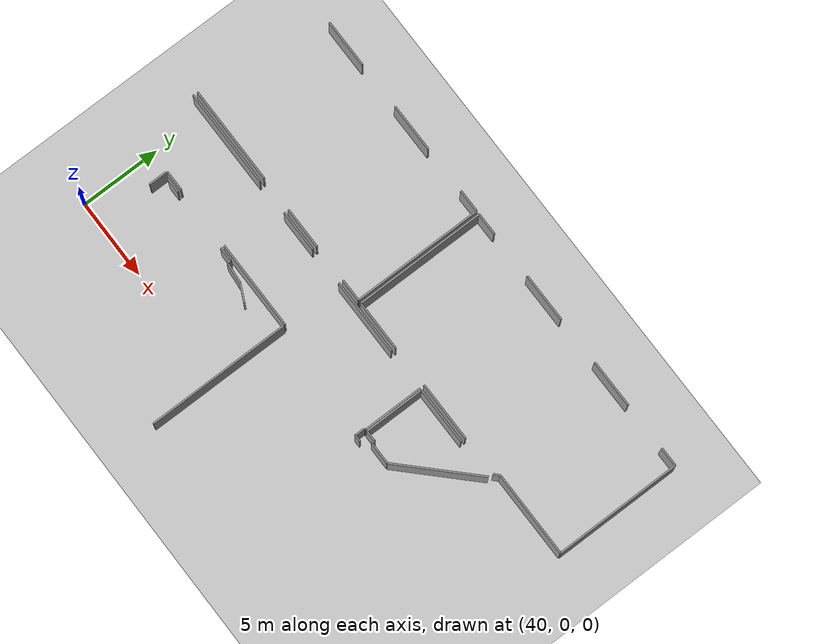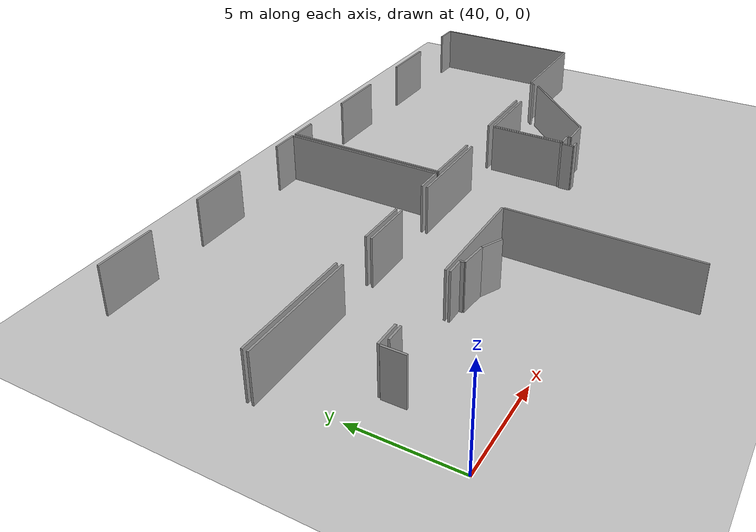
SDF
<sdf version="1.6">
 <world name="default">
  <model name="ground_plane">
   <static>1</static>
   <link name="link">
    <collision name="collision">
     <geometry><plane><normal>0 0 1</normal><size>100 100</size></plane></geometry>
     <surface><friction><ode><mu>100</mu><mu2>50</mu2></ode></friction></surface>
    </collision>
    <visual name="visual">
     <cast_shadows>0</cast_shadows>
     <geometry><plane><normal>0 0 1</normal><size>100 100</size></plane></geometry>
     <material>
      <script><uri>file://media/materials/scripts/gazebo.material</uri><name>Gazebo/Grey</name></script>
     </material>
    </visual>
   </link>
  </model>
  <model name="50041184">
   <static>1</static>
   <link name="Wall_45">
    <collision name="Wall_45_Collision">
     <geometry><box><size>3.74175611428 0.1 2.5</size></box></geometry>
     <pose>1.87087805714 0 1.25 0 0 0</pose>
    </collision>
    <visual name="Wall_45_Visual">
     <pose>1.87087805714 0 1.25 0 0 0</pose>
     <geometry><box><size>3.74175611428 0.1 2.5</size></box></geometry>
     <material>
      <script><uri>file://media/materials/scripts/gazebo.material</uri><name>Gazebo/Grey</name></script>
      <ambient>1 1 1 1</ambient>
     </material>
    </visual>
    <pose>131.436781536 -8.50927695013 0 0 0 -1.57079632679</pose>
   </link>
   <link name="Wall_46">
    <collision name="Wall_46_Collision">
     <geometry><box><size>0.083787712405 0.1 2.5</size></box></geometry>
     <pose>0.0418938562025 0 1.25 0 0 0</pose>
    </collision>
    <visual name="Wall_46_Visual">
     <pose>0.0418938562025 0 1.25 0 0 0</pose>
     <geometry><box><size>0.083787712405 0.1 2.5</size></box></geometry>
     <material>
      <script><uri>file://media/materials/scripts/gazebo.material</uri><name>Gazebo/Grey</name></script>
      <ambient>1 1 1 1</ambient>
     </material>
    </visual>
    <pose>131.436781536 -12.2510330644 0 0 0 3.14159265359</pose>
   </link>
   <link name="Wall_47">
    <collision name="Wall_47_Collision">
     <geometry><box><size>5.54014510508 0.1 2.5</size></box></geometry>
     <pose>2.77007255254 0 1.25 0 0 0</pose>
    </collision>
    <visual name="Wall_47_Visual">
     <pose>2.77007255254 0 1.25 0 0 0</pose>
     <geometry><box><size>5.54014510508 0.1 2.5</size></box></geometry>
     <material>
      <script><uri>file://media/materials/scripts/gazebo.material</uri><name>Gazebo/Grey</name></script>
      <ambient>1 1 1 1</ambient>
     </material>
    </visual>
    <pose>124.116782298 -12.2510330644 0 0 0 3.14159265359</pose>
   </link>
   <link name="Wall_48">
    <collision name="Wall_48_Collision">
     <geometry><box><size>1.27230371776 0.1 2.5</size></box></geometry>
     <pose>0.636151858881 0 1.25 0 0 0</pose>
    </collision>
    <visual name="Wall_48_Visual">
     <pose>0.636151858881 0 1.25 0 0 0</pose>
     <geometry><box><size>1.27230371776 0.1 2.5</size></box></geometry>
     <material>
      <script><uri>file://media/materials/scripts/gazebo.material</uri><name>Gazebo/Grey</name></script>
      <ambient>1 1 1 1</ambient>
     </material>
    </visual>
    <pose>114.623761434 -12.2510330644 0 0 0 3.14159265359</pose>
   </link>
   <link name="Wall_72">
    <collision name="Wall_72_Collision">
     <geometry><box><size>6.14951028621 0.1 2.5</size></box></geometry>
     <pose>3.07475514311 0 1.25 0 0 0</pose>
    </collision>
    <visual name="Wall_72_Visual">
     <pose>3.07475514311 0 1.25 0 0 0</pose>
     <geometry><box><size>6.14951028621 0.1 2.5</size></box></geometry>
     <material>
      <script><uri>file://media/materials/scripts/gazebo.material</uri><name>Gazebo/Grey</name></script>
      <ambient>1 1 1 1</ambient>
     </material>
    </visual>
    <pose>110.758989723 -8.4970896465 0 0 0 0.0</pose>
   </link>
   <link name="Wall_73">
    <collision name="Wall_73_Collision">
     <geometry><box><size>2.59234104138 0.1 2.5</size></box></geometry>
     <pose>1.29617052069 0 1.25 0 0 0</pose>
    </collision>
    <visual name="Wall_73_Visual">
     <pose>1.29617052069 0 1.25 0 0 0</pose>
     <geometry><box><size>2.59234104138 0.1 2.5</size></box></geometry>
     <material>
      <script><uri>file://media/materials/scripts/gazebo.material</uri><name>Gazebo/Grey</name></script>
      <ambient>1 1 1 1</ambient>
     </material>
    </visual>
    <pose>119.11617928 -8.4970896465 0 0 0 0.0</pose>
   </link>
   <link name="Wall_74">
    <collision name="Wall_74_Collision">
     <geometry><box><size>4.76955205312 0.1 2.5</size></box></geometry>
     <pose>2.38477602656 0 1.25 0 0 0</pose>
    </collision>
    <visual name="Wall_74_Visual">
     <pose>2.38477602656 0 1.25 0 0 0</pose>
     <geometry><box><size>4.76955205312 0.1 2.5</size></box></geometry>
     <material>
      <script><uri>file://media/materials/scripts/gazebo.material</uri><name>Gazebo/Grey</name></script>
      <ambient>1 1 1 1</ambient>
     </material>
    </visual>
    <pose>124.083775017 -8.4970896465 0 0 0 0.0</pose>
   </link>
   <link name="Wall_129">
    <collision name="Wall_129_Collision">
     <geometry><box><size>1.39646187342 0.1 2.5</size></box></geometry>
     <pose>0.698230936709 0 1.25 0 0 0</pose>
    </collision>
    <visual name="Wall_129_Visual">
     <pose>0.698230936709 0 1.25 0 0 0</pose>
     <geometry><box><size>1.39646187342 0.1 2.5</size></box></geometry>
     <material>
      <script><uri>file://media/materials/scripts/gazebo.material</uri><name>Gazebo/Grey</name></script>
      <ambient>1 1 1 1</ambient>
     </material>
    </visual>
    <pose>125.490392977 -8.22198665744 0 0 0 3.14159265359</pose>
   </link>
   <link name="Wall_130">
    <collision name="Wall_130_Collision">
     <geometry><box><size>2.60249712773 0.1 2.5</size></box></geometry>
     <pose>1.30124856387 0 1.25 0 0 0</pose>
    </collision>
    <visual name="Wall_130_Visual">
     <pose>1.30124856387 0 1.25 0 0 0</pose>
     <geometry><box><size>2.60249712773 0.1 2.5</size></box></geometry>
     <material>
      <script><uri>file://media/materials/scripts/gazebo.material</uri><name>Gazebo/Grey</name></script>
      <ambient>1 1 1 1</ambient>
     </material>
    </visual>
    <pose>121.72121543 -8.22198665744 0 0 0 3.14159265359</pose>
   </link>
   <link name="Wall_131">
    <collision name="Wall_131_Collision">
     <geometry><box><size>6.11853422284 0.1 2.5</size></box></geometry>
     <pose>3.05926711142 0 1.25 0 0 0</pose>
    </collision>
    <visual name="Wall_131_Visual">
     <pose>3.05926711142 0 1.25 0 0 0</pose>
     <geometry><box><size>6.11853422284 0.1 2.5</size></box></geometry>
     <material>
      <script><uri>file://media/materials/scripts/gazebo.material</uri><name>Gazebo/Grey</name></script>
      <ambient>1 1 1 1</ambient>
     </material>
    </visual>
    <pose>116.898343923 -8.22198665744 0 0 0 3.14159265359</pose>
   </link>
   <link name="Wall_135">
    <collision name="Wall_135_Collision">
     <geometry><box><size>3.02575202646 0.1 2.5</size></box></geometry>
     <pose>1.51287601323 0 1.25 0 0 0</pose>
    </collision>
    <visual name="Wall_135_Visual">
     <pose>1.51287601323 0 1.25 0 0 0</pose>
     <geometry><box><size>3.02575202646 0.1 2.5</size></box></geometry>
     <material>
      <script><uri>file://media/materials/scripts/gazebo.material</uri><name>Gazebo/Grey</name></script>
      <ambient>1 1 1 1</ambient>
     </material>
    </visual>
    <pose>112.076361074 -0.0144724230518 0 0 0 0.0</pose>
   </link>
   <link name="Wall_136">
    <collision name="Wall_136_Collision">
     <geometry><box><size>3.03540030849 0.1 2.5</size></box></geometry>
     <pose>1.51770015425 0 1.25 0 0 0</pose>
    </collision>
    <visual name="Wall_136_Visual">
     <pose>1.51770015425 0 1.25 0 0 0</pose>
     <geometry><box><size>3.03540030849 0.1 2.5</size></box></geometry>
     <material>
      <script><uri>file://media/materials/scripts/gazebo.material</uri><name>Gazebo/Grey</name></script>
      <ambient>1 1 1 1</ambient>
     </material>
    </visual>
    <pose>118.072641408 -0.0144724230518 0 0 0 0.0</pose>
   </link>
   <link name="Wall_137">
    <collision name="Wall_137_Collision">
     <geometry><box><size>1.4218520893 0.1 2.5</size></box></geometry>
     <pose>0.710926044649 0 1.25 0 0 0</pose>
    </collision>
    <visual name="Wall_137_Visual">
     <pose>0.710926044649 0 1.25 0 0 0</pose>
     <geometry><box><size>1.4218520893 0.1 2.5</size></box></geometry>
     <material>
      <script><uri>file://media/materials/scripts/gazebo.material</uri><name>Gazebo/Grey</name></script>
      <ambient>1 1 1 1</ambient>
     </material>
    </visual>
    <pose>124.066001866 -0.0144724230518 0 0 0 0.0</pose>
   </link>
   <link name="Wall_138">
    <collision name="Wall_138_Collision">
     <geometry><box><size>8.20751462712 0.1 2.5</size></box></geometry>
     <pose>4.10375731356 0 1.25 0 0 0</pose>
    </collision>
    <visual name="Wall_138_Visual">
     <pose>4.10375731356 0 1.25 0 0 0</pose>
     <geometry><box><size>8.20751462712 0.1 2.5</size></box></geometry>
     <material>
      <script><uri>file://media/materials/scripts/gazebo.material</uri><name>Gazebo/Grey</name></script>
      <ambient>1 1 1 1</ambient>
     </material>
    </visual>
    <pose>125.487853955 -0.0144724230518 0 0 0 -1.57048697351</pose>
   </link>
   <link name="Wall_139">
    <collision name="Wall_139_Collision">
     <geometry><box><size>5.36114408313 0.1 2.5</size></box></geometry>
     <pose>2.68057204156 0 1.25 0 0 0</pose>
    </collision>
    <visual name="Wall_139_Visual">
     <pose>2.68057204156 0 1.25 0 0 0</pose>
     <geometry><box><size>5.36114408313 0.1 2.5</size></box></geometry>
     <material>
      <script><uri>file://media/materials/scripts/gazebo.material</uri><name>Gazebo/Grey</name></script>
      <ambient>1 1 1 1</ambient>
     </material>
    </visual>
    <pose>143.25846605 -7.94370989139 0 0 0 3.14159265359</pose>
   </link>
   <link name="Wall_140">
    <collision name="Wall_140_Collision">
     <geometry><box><size>0.412052951037 0.1 2.5</size></box></geometry>
     <pose>0.206026475519 0 1.25 0 0 0</pose>
    </collision>
    <visual name="Wall_140_Visual">
     <pose>0.206026475519 0 1.25 0 0 0</pose>
     <geometry><box><size>0.412052951037 0.1 2.5</size></box></geometry>
     <material>
      <script><uri>file://media/materials/scripts/gazebo.material</uri><name>Gazebo/Grey</name></script>
      <ambient>1 1 1 1</ambient>
     </material>
    </visual>
    <pose>137.897321967 -7.94370989139 0 0 0 -2.41221262657</pose>
   </link>
   <link name="Wall_141">
    <collision name="Wall_141_Collision">
     <geometry><box><size>3.7120495617 0.1 2.5</size></box></geometry>
     <pose>1.85602478085 0 1.25 0 0 0</pose>
    </collision>
    <visual name="Wall_141_Visual">
     <pose>1.85602478085 0 1.25 0 0 0</pose>
     <geometry><box><size>3.7120495617 0.1 2.5</size></box></geometry>
     <material>
      <script><uri>file://media/materials/scripts/gazebo.material</uri><name>Gazebo/Grey</name></script>
      <ambient>1 1 1 1</ambient>
     </material>
    </visual>
    <pose>135.133596968 -8.21830507614 0 0 0 3.14159265359</pose>
   </link>
   <link name="Wall_142">
    <collision name="Wall_142_Collision">
     <geometry><box><size>3.14711725836 0.1 2.5</size></box></geometry>
     <pose>1.57355862918 0 1.25 0 0 0</pose>
    </collision>
    <visual name="Wall_142_Visual">
     <pose>1.57355862918 0 1.25 0 0 0</pose>
     <geometry><box><size>3.14711725836 0.1 2.5</size></box></geometry>
     <material>
      <script><uri>file://media/materials/scripts/gazebo.material</uri><name>Gazebo/Grey</name></script>
      <ambient>1 1 1 1</ambient>
     </material>
    </visual>
    <pose>128.859674624 -8.21830507614 0 0 0 3.14159265359</pose>
   </link>
   <link name="Wall_143">
    <collision name="Wall_143_Collision">
     <geometry><box><size>8.19659644156 0.1 2.5</size></box></geometry>
     <pose>4.09829822078 0 1.25 0 0 0</pose>
    </collision>
    <visual name="Wall_143_Visual">
     <pose>4.09829822078 0 1.25 0 0 0</pose>
     <geometry><box><size>8.19659644156 0.1 2.5</size></box></geometry>
     <material>
      <script><uri>file://media/materials/scripts/gazebo.material</uri><name>Gazebo/Grey</name></script>
      <ambient>1 1 1 1</ambient>
     </material>
    </visual>
    <pose>125.712557366 -8.21830507614 0 0 0 1.57079632679</pose>
   </link>
   <link name="Wall_144">
    <collision name="Wall_144_Collision">
     <geometry><box><size>1.38376676548 0.1 2.5</size></box></geometry>
     <pose>0.691883382738 0 1.25 0 0 0</pose>
    </collision>
    <visual name="Wall_144_Visual">
     <pose>0.691883382738 0 1.25 0 0 0</pose>
     <geometry><box><size>1.38376676548 0.1 2.5</size></box></geometry>
     <material>
      <script><uri>file://media/materials/scripts/gazebo.material</uri><name>Gazebo/Grey</name></script>
      <ambient>1 1 1 1</ambient>
     </material>
    </visual>
    <pose>125.712557366 -0.0217086345777 0 0 0 0.0</pose>
   </link>
   <link name="Wall_145">
    <collision name="Wall_145_Collision">
     <geometry><box><size>3.04936492723 0.1 2.5</size></box></geometry>
     <pose>1.52468246361 0 1.25 0 0 0</pose>
    </collision>
    <visual name="Wall_145_Visual">
     <pose>1.52468246361 0 1.25 0 0 0</pose>
     <geometry><box><size>3.04936492723 0.1 2.5</size></box></geometry>
     <material>
      <script><uri>file://media/materials/scripts/gazebo.material</uri><name>Gazebo/Grey</name></script>
      <ambient>1 1 1 1</ambient>
     </material>
    </visual>
    <pose>130.056823303 -0.0217086345777 0 0 0 0.0</pose>
   </link>
   <link name="Wall_146">
    <collision name="Wall_146_Collision">
     <geometry><box><size>2.9909674307 0.1 2.5</size></box></geometry>
     <pose>1.49548371535 0 1.25 0 0 0</pose>
    </collision>
    <visual name="Wall_146_Visual">
     <pose>1.49548371535 0 1.25 0 0 0</pose>
     <geometry><box><size>2.9909674307 0.1 2.5</size></box></geometry>
     <material>
      <script><uri>file://media/materials/scripts/gazebo.material</uri><name>Gazebo/Grey</name></script>
      <ambient>1 1 1 1</ambient>
     </material>
    </visual>
    <pose>136.103503215 -0.0217086345777 0 0 0 0.0</pose>
   </link>
   <link name="Wall_147">
    <collision name="Wall_147_Collision">
     <geometry><box><size>1.20476574352 0.1 2.5</size></box></geometry>
     <pose>0.60238287176 0 1.25 0 0 0</pose>
    </collision>
    <visual name="Wall_147_Visual">
     <pose>0.60238287176 0 1.25 0 0 0</pose>
     <geometry><box><size>1.20476574352 0.1 2.5</size></box></geometry>
     <material>
      <script><uri>file://media/materials/scripts/gazebo.material</uri><name>Gazebo/Grey</name></script>
      <ambient>1 1 1 1</ambient>
     </material>
    </visual>
    <pose>142.062586882 -0.0217086345777 0 0 0 0.0</pose>
   </link>
   <link name="Wall_148">
    <collision name="Wall_148_Collision">
     <geometry><box><size>7.92200624111 0.1 2.5</size></box></geometry>
     <pose>3.96100312056 0 1.25 0 0 0</pose>
    </collision>
    <visual name="Wall_148_Visual">
     <pose>3.96100312056 0 1.25 0 0 0</pose>
     <geometry><box><size>7.92200624111 0.1 2.5</size></box></geometry>
     <material>
      <script><uri>file://media/materials/scripts/gazebo.material</uri><name>Gazebo/Grey</name></script>
      <ambient>1 1 1 1</ambient>
     </material>
    </visual>
    <pose>143.267352626 -0.0217086345777 0 0 0 -1.57191808524</pose>
   </link>
   <link name="Wall_149">
    <collision name="Wall_149_Collision">
     <geometry><box><size>1.38122774389 0.1 2.5</size></box></geometry>
     <pose>0.690613871944 0 1.25 0 0 0</pose>
    </collision>
    <visual name="Wall_149_Visual">
     <pose>0.690613871944 0 1.25 0 0 0</pose>
     <geometry><box><size>1.38122774389 0.1 2.5</size></box></geometry>
     <material>
      <script><uri>file://media/materials/scripts/gazebo.material</uri><name>Gazebo/Grey</name></script>
      <ambient>1 1 1 1</ambient>
     </material>
    </visual>
    <pose>133.611453526 -12.4403171238 0 0 0 3.14159265359</pose>
   </link>
   <link name="Wall_150">
    <collision name="Wall_150_Collision">
     <geometry><box><size>0.189284059388 0.1 2.5</size></box></geometry>
     <pose>0.0946420296939 0 1.25 0 0 0</pose>
    </collision>
    <visual name="Wall_150_Visual">
     <pose>0.0946420296939 0 1.25 0 0 0</pose>
     <geometry><box><size>0.189284059388 0.1 2.5</size></box></geometry>
     <material>
      <script><uri>file://media/materials/scripts/gazebo.material</uri><name>Gazebo/Grey</name></script>
      <ambient>1 1 1 1</ambient>
     </material>
    </visual>
    <pose>132.230225782 -12.4403171238 0 0 0 1.57079632679</pose>
   </link>
   <link name="Wall_151">
    <collision name="Wall_151_Collision">
     <geometry><box><size>0.68299680718 0.1 2.5</size></box></geometry>
     <pose>0.34149840359 0 1.25 0 0 0</pose>
    </collision>
    <visual name="Wall_151_Visual">
     <pose>0.34149840359 0 1.25 0 0 0</pose>
     <geometry><box><size>0.68299680718 0.1 2.5</size></box></geometry>
     <material>
      <script><uri>file://media/materials/scripts/gazebo.material</uri><name>Gazebo/Grey</name></script>
      <ambient>1 1 1 1</ambient>
     </material>
    </visual>
    <pose>132.230225782 -12.2510330644 0 0 0 3.14159265359</pose>
   </link>
   <link name="Wall_152">
    <collision name="Wall_152_Collision">
     <geometry><box><size>3.7539434179 0.1 2.5</size></box></geometry>
     <pose>1.87697170895 0 1.25 0 0 0</pose>
    </collision>
    <visual name="Wall_152_Visual">
     <pose>1.87697170895 0 1.25 0 0 0</pose>
     <geometry><box><size>3.7539434179 0.1 2.5</size></box></geometry>
     <material>
      <script><uri>file://media/materials/scripts/gazebo.material</uri><name>Gazebo/Grey</name></script>
      <ambient>1 1 1 1</ambient>
     </material>
    </visual>
    <pose>131.547228975 -12.2510330644 0 0 0 1.57079632679</pose>
   </link>
   <link name="Wall_153">
    <collision name="Wall_153_Collision">
     <geometry><box><size>3.57367288515 0.1 2.5</size></box></geometry>
     <pose>1.78683644258 0 1.25 0 0 0</pose>
    </collision>
    <visual name="Wall_153_Visual">
     <pose>1.78683644258 0 1.25 0 0 0</pose>
     <geometry><box><size>3.57367288515 0.1 2.5</size></box></geometry>
     <material>
      <script><uri>file://media/materials/scripts/gazebo.material</uri><name>Gazebo/Grey</name></script>
      <ambient>1 1 1 1</ambient>
     </material>
    </visual>
    <pose>131.547228975 -8.4970896465 0 0 0 0.0</pose>
   </link>
   <link name="Wall_154">
    <collision name="Wall_154_Collision">
     <geometry><box><size>5.58545987693 0.1 2.5</size></box></geometry>
     <pose>2.79272993847 0 1.25 0 0 0</pose>
    </collision>
    <visual name="Wall_154_Visual">
     <pose>2.79272993847 0 1.25 0 0 0</pose>
     <geometry><box><size>5.58545987693 0.1 2.5</size></box></geometry>
     <material>
      <script><uri>file://media/materials/scripts/gazebo.material</uri><name>Gazebo/Grey</name></script>
      <ambient>1 1 1 1</ambient>
     </material>
    </visual>
    <pose>137.567249161 -8.4970896465 0 0 0 -2.35778559153</pose>
   </link>
   <link name="Wall_157">
    <collision name="Wall_157_Collision">
     <geometry><box><size>0.410051986467 0.1 2.5</size></box></geometry>
     <pose>0.205025993233 0 1.25 0 0 0</pose>
    </collision>
    <visual name="Wall_157_Visual">
     <pose>0.205025993233 0 1.25 0 0 0</pose>
     <geometry><box><size>0.410051986467 0.1 2.5</size></box></geometry>
     <material>
      <script><uri>file://media/materials/scripts/gazebo.material</uri><name>Gazebo/Grey</name></script>
      <ambient>1 1 1 1</ambient>
     </material>
    </visual>
    <pose>131.749081192 -12.8945480859 0 0 0 3.14159265359</pose>
   </link>
   <link name="Wall_158">
    <collision name="Wall_158_Collision">
     <geometry><box><size>0.570899004069 0.1 2.5</size></box></geometry>
     <pose>0.285449502034 0 1.25 0 0 0</pose>
    </collision>
    <visual name="Wall_158_Visual">
     <pose>0.285449502034 0 1.25 0 0 0</pose>
     <geometry><box><size>0.570899004069 0.1 2.5</size></box></geometry>
     <material>
      <script><uri>file://media/materials/scripts/gazebo.material</uri><name>Gazebo/Grey</name></script>
      <ambient>1 1 1 1</ambient>
     </material>
    </visual>
    <pose>131.339029205 -12.8945480859 0 0 0 1.57079632679</pose>
   </link>
   <link name="Wall_159">
    <collision name="Wall_159_Collision">
     <geometry><box><size>8.96782999982 0.1 2.5</size></box></geometry>
     <pose>4.48391499991 0 1.25 0 0 0</pose>
    </collision>
    <visual name="Wall_159_Visual">
     <pose>4.48391499991 0 1.25 0 0 0</pose>
     <geometry><box><size>8.96782999982 0.1 2.5</size></box></geometry>
     <material>
      <script><uri>file://media/materials/scripts/gazebo.material</uri><name>Gazebo/Grey</name></script>
      <ambient>1 1 1 1</ambient>
     </material>
    </visual>
    <pose>124.126938384 -12.3236490818 0 0 0 -1.57192882914</pose>
   </link>
   <link name="Wall_164">
    <collision name="Wall_164_Collision">
     <geometry><box><size>0.88027878457 0.1 2.5</size></box></geometry>
     <pose>0.440139392285 0 1.25 0 0 0</pose>
    </collision>
    <visual name="Wall_164_Visual">
     <pose>0.440139392285 0 1.25 0 0 0</pose>
     <geometry><box><size>0.88027878457 0.1 2.5</size></box></geometry>
     <material>
      <script><uri>file://media/materials/scripts/gazebo.material</uri><name>Gazebo/Grey</name></script>
      <ambient>1 1 1 1</ambient>
     </material>
    </visual>
    <pose>113.751226665 -12.4632952692 0 0 0 0.0</pose>
   </link>
   <link name="Wall_165">
    <collision name="Wall_165_Collision">
     <geometry><box><size>0.889927066605 0.1 2.5</size></box></geometry>
     <pose>0.444963533302 0 1.25 0 0 0</pose>
    </collision>
    <visual name="Wall_165_Visual">
     <pose>0.444963533302 0 1.25 0 0 0</pose>
     <geometry><box><size>0.889927066605 0.1 2.5</size></box></geometry>
     <material>
      <script><uri>file://media/materials/scripts/gazebo.material</uri><name>Gazebo/Grey</name></script>
      <ambient>1 1 1 1</ambient>
     </material>
    </visual>
    <pose>118.566481107 -12.4632952692 0 0 0 0.0</pose>
   </link>
   <link name="Wall_166">
    <collision name="Wall_166_Collision">
     <geometry><box><size>0.217213296856 0.1 2.5</size></box></geometry>
     <pose>0.108606648428 0 1.25 0 0 0</pose>
    </collision>
    <visual name="Wall_166_Visual">
     <pose>0.108606648428 0 1.25 0 0 0</pose>
     <geometry><box><size>0.217213296856 0.1 2.5</size></box></geometry>
     <material>
      <script><uri>file://media/materials/scripts/gazebo.material</uri><name>Gazebo/Grey</name></script>
      <ambient>1 1 1 1</ambient>
     </material>
    </visual>
    <pose>119.456408173 -12.4632952692 0 0 0 -1.57079632679</pose>
   </link>
   <link name="Wall_167">
    <collision name="Wall_167_Collision">
     <geometry><box><size>1.33389061993 0.1 2.5</size></box></geometry>
     <pose>0.666945309963 0 1.25 0 0 0</pose>
    </collision>
    <visual name="Wall_167_Visual">
     <pose>0.666945309963 0 1.25 0 0 0</pose>
     <geometry><box><size>1.33389061993 0.1 2.5</size></box></geometry>
     <material>
      <script><uri>file://media/materials/scripts/gazebo.material</uri><name>Gazebo/Grey</name></script>
      <ambient>1 1 1 1</ambient>
     </material>
    </visual>
    <pose>119.456408173 -12.680508566 0 0 0 -0.094744170072</pose>
   </link>
   <link name="Wall_168">
    <collision name="Wall_168_Collision">
     <geometry><box><size>1.10160712691 0.1 2.5</size></box></geometry>
     <pose>0.550803563457 0 1.25 0 0 0</pose>
    </collision>
    <visual name="Wall_168_Visual">
     <pose>0.550803563457 0 1.25 0 0 0</pose>
     <geometry><box><size>1.10160712691 0.1 2.5</size></box></geometry>
     <material>
      <script><uri>file://media/materials/scripts/gazebo.material</uri><name>Gazebo/Grey</name></script>
      <ambient>1 1 1 1</ambient>
     </material>
    </visual>
    <pose>120.784316464 -12.8066979389 0 0 0 -0.448288783809</pose>
   </link>
   <link name="Wall_186">
    <collision name="Wall_186_Collision">
     <geometry><box><size>1.11425344965 0.1 2.5</size></box></geometry>
     <pose>0.557126724823 0 1.25 0 0 0</pose>
    </collision>
    <visual name="Wall_186_Visual">
     <pose>0.557126724823 0 1.25 0 0 0</pose>
     <geometry><box><size>1.11425344965 0.1 2.5</size></box></geometry>
     <material>
      <script><uri>file://media/materials/scripts/gazebo.material</uri><name>Gazebo/Grey</name></script>
      <ambient>1 1 1 1</ambient>
     </material>
    </visual>
    <pose>113.333430662 -12.3456116186 0 0 0 -1.56817584743</pose>
   </link>
   <pose>-71.6 16.80775925 0 0 0 0</pose>
  </model>
 </world>
</sdf>
